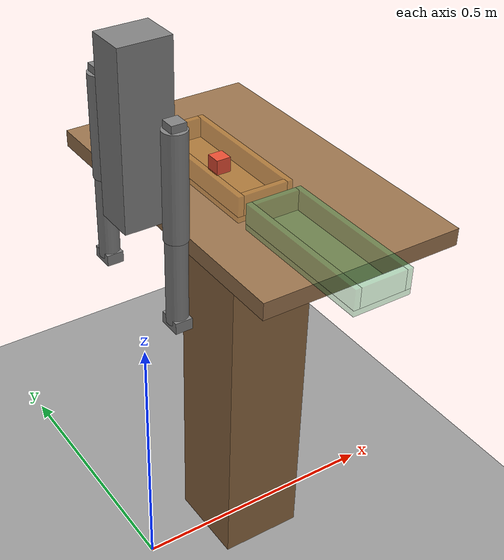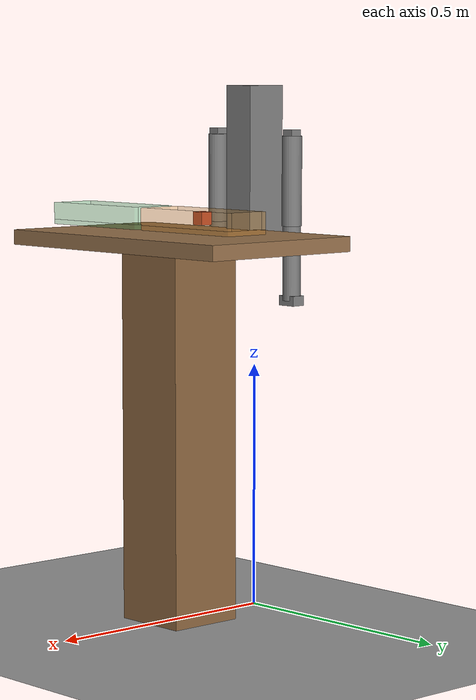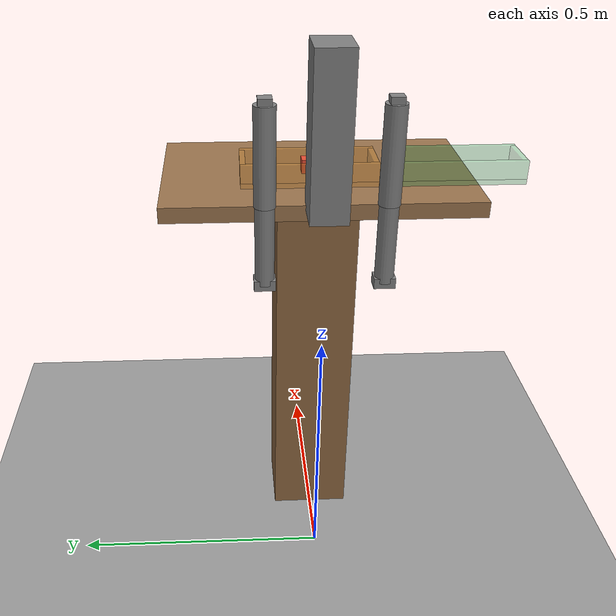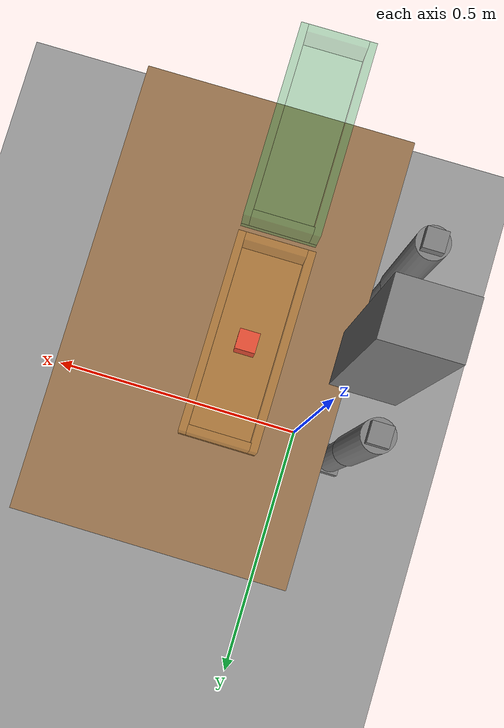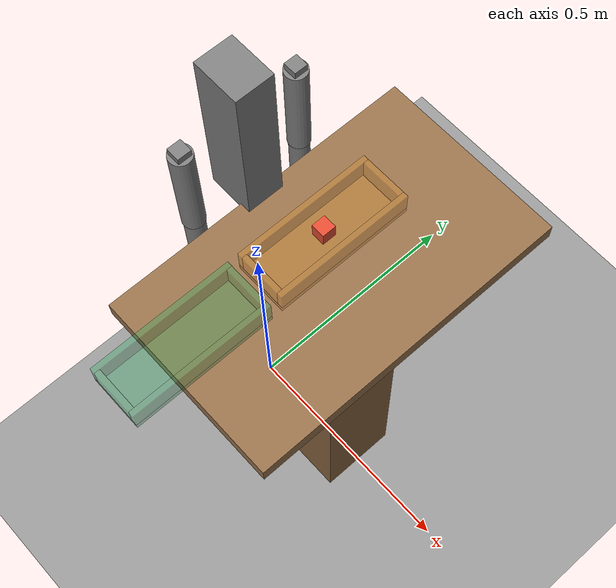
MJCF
<!--
  GENERATED by scripts/build_model.py (task=suction_pick_place) — do NOT hand-edit.
  Source of truth: models/urdf/humanoid.urdf + models/mjcf/scene.xml + build_model.py.
-->
<mujoco model="bin_picking_scene">
  <compiler angle="radian"/>

  <option integrator="implicitfast"/>

  <visual>
    <global offwidth="1280" offheight="720"/>
  </visual>

  <default>
    <default/>
  </default>

  <worldbody>
    <geom name="ground" size="5 5 0.1" type="plane" rgba="0.6 0.6 0.6 1"/>
    <geom name="pp_table_pedestal" size="0.08 0.08 0.375" pos="0.205 0 0.375" type="box" rgba="0.55 0.4 0.25 1"/>
    <geom name="pp_table_top" size="0.18 0.3 0.015" pos="0.205 0 0.765" type="box" rgba="0.6 0.45 0.3 1"/>
    <geom name="box_source_floor" size="0.05 0.13 0.005" pos="0.16 0.02 0.785" type="box" rgba="0.85 0.55 0.15 0.35"/>
    <geom name="box_source_wall_front" size="0.005 0.13 0.0175" pos="0.205 0.02 0.8075" type="box" rgba="0.85 0.55 0.15 0.35"/>
    <geom name="box_source_wall_back" size="0.005 0.13 0.0175" pos="0.115 0.02 0.8075" type="box" rgba="0.85 0.55 0.15 0.35"/>
    <geom name="box_source_wall_left" size="0.04 0.005 0.0175" pos="0.16 0.145 0.8075" type="box" rgba="0.85 0.55 0.15 0.35"/>
    <geom name="box_source_wall_right" size="0.04 0.005 0.0175" pos="0.16 -0.105 0.8075" type="box" rgba="0.85 0.55 0.15 0.35"/>
    <geom name="box_dest_floor" size="0.05 0.13 0.005" pos="0.16 -0.26 0.785" type="box" rgba="0.15 0.65 0.35 0.35"/>
    <geom name="box_dest_wall_front" size="0.005 0.13 0.0175" pos="0.205 -0.26 0.8075" type="box" rgba="0.15 0.65 0.35 0.35"/>
    <geom name="box_dest_wall_back" size="0.005 0.13 0.0175" pos="0.115 -0.26 0.8075" type="box" rgba="0.15 0.65 0.35 0.35"/>
    <geom name="box_dest_wall_left" size="0.04 0.005 0.0175" pos="0.16 -0.135 0.8075" type="box" rgba="0.15 0.65 0.35 0.35"/>
    <geom name="box_dest_wall_right" size="0.04 0.005 0.0175" pos="0.16 -0.385 0.8075" type="box" rgba="0.15 0.65 0.35 0.35"/>
    <light name="key_light" pos="0 0 3" dir="0 0 -1" diffuse="1 1 1"/>
    <body name="mount" pos="0 0 0.92">
      <frame name="robot_mount">
        <body name="base_link">
          <body name="torso_link">
            <geom name="torso_collision" size="0.045 0.035 0.15" type="box" density="550"/>
            <camera name="head_camera" pos="0.45 -0.12 0.15" quat="0.645974 0.287606 0.287606 0.645974" resolution="640 480" fovy="73.7398"/>
            <body name="left_shoulder_yaw_link" pos="0 0.11 0.05">
              <joint name="left_shoulder_yaw_joint" pos="0 0 0" axis="0 0 1" range="-1.5708 1.5708" actuatorfrcrange="-3 3"/>
              <geom name="left_shoulder_yaw_actuator_collision" size="0.0125 0.0125 0.0125" type="box" density="9600"/>
              <body name="left_shoulder_link">
                <joint name="left_shoulder_pitch_joint" pos="0 0 0" axis="0 1 0" range="-2.0944 2.7053" actuatorfrcrange="-3 3"/>
                <geom name="left_shoulder_actuator_collision" size="0.0125 0.0125 0.0125" type="box" density="9600"/>
                <body name="left_upper_arm_link">
                  <joint name="left_shoulder_roll_joint" pos="0 0 0" axis="1 0 0" range="-0.8727 2.0944" actuatorfrcrange="-3 3"/>
                  <geom name="left_shoulder_roll_actuator_collision" size="0.0125 0.0125 0.0125" pos="0 0 -0.015" type="box" density="9600"/>
                  <geom name="left_upper_arm_collision" size="0.02 0.09" pos="0 0 -0.09" type="cylinder" density="1200"/>
                  <body name="left_forearm_link" pos="0 0 -0.18">
                    <joint name="left_elbow_joint" pos="0 0 0" axis="0 1 0" range="0 2.5831" actuatorfrcrange="-2 2"/>
                    <geom name="left_elbow_actuator_collision" size="0.0125 0.0125 0.0125" pos="0 0 -0.015" type="box" density="9600"/>
                    <geom name="left_forearm_collision" size="0.018 0.075" pos="0 0 -0.075" type="cylinder" density="1200"/>
                    <body name="left_ee_mount_link" pos="0 0 -0.15">
                      <body name="left_gripper_base_link">
                        <geom name="left_gripper_base_collision" size="0.015 0.02 0.01" type="box" density="5000"/>
                        <body name="left_gripper_finger1_link">
                          <joint name="left_gripper_finger1_joint" pos="0 0 0" axis="0 1 0" type="slide" range="0 0.03" actuatorfrcrange="-10 10"/>
                          <geom name="left_gripper_finger1_collision" size="0.001 0.001 0.001" pos="0 0.004 -0.025" type="box" contype="0" conaffinity="0" friction="1.2" density="1200" rgba="0.5 0.5 0.5 0"/>
                        </body>
                        <body name="left_gripper_finger2_link">
                          <joint name="left_gripper_finger2_joint" pos="0 0 0" axis="0 -1 0" type="slide" range="0 0.03" actuatorfrcrange="-10 10"/>
                          <geom name="left_gripper_finger2_collision" size="0.001 0.001 0.001" pos="0 -0.004 -0.025" type="box" contype="0" conaffinity="0" friction="1.2" density="1200" rgba="0.5 0.5 0.5 0"/>
                        </body>
                      </body>
                    </body>
                  </body>
                </body>
              </body>
            </body>
            <body name="right_shoulder_yaw_link" pos="0 -0.11 0.05">
              <joint name="right_shoulder_yaw_joint" pos="0 0 0" axis="0 0 1" range="-1.5708 1.5708" actuatorfrcrange="-3 3"/>
              <geom name="right_shoulder_yaw_actuator_collision" size="0.0125 0.0125 0.0125" type="box" density="9600"/>
              <body name="right_shoulder_link">
                <joint name="right_shoulder_pitch_joint" pos="0 0 0" axis="0 1 0" range="-2.0944 2.7053" actuatorfrcrange="-3 3"/>
                <geom name="right_shoulder_actuator_collision" size="0.0125 0.0125 0.0125" type="box" density="9600"/>
                <body name="right_upper_arm_link">
                  <joint name="right_shoulder_roll_joint" pos="0 0 0" axis="-1 0 0" range="-0.8727 2.0944" actuatorfrcrange="-3 3"/>
                  <geom name="right_shoulder_roll_actuator_collision" size="0.0125 0.0125 0.0125" pos="0 0 -0.015" type="box" density="9600"/>
                  <geom name="right_upper_arm_collision" size="0.02 0.09" pos="0 0 -0.09" type="cylinder" density="1200"/>
                  <body name="right_forearm_link" pos="0 0 -0.18">
                    <joint name="right_elbow_joint" pos="0 0 0" axis="0 1 0" range="0 2.5831" actuatorfrcrange="-2 2"/>
                    <geom name="right_elbow_actuator_collision" size="0.0125 0.0125 0.0125" pos="0 0 -0.015" type="box" density="9600"/>
                    <geom name="right_forearm_collision" size="0.018 0.075" pos="0 0 -0.075" type="cylinder" density="1200"/>
                    <body name="right_ee_mount_link" pos="0 0 -0.15">
                      <body name="right_gripper_base_link">
                        <geom name="right_gripper_base_collision" size="0.015 0.02 0.01" type="box" density="5000"/>
                        <body name="right_gripper_finger1_link">
                          <joint name="right_gripper_finger1_joint" pos="0 0 0" axis="0 1 0" type="slide" range="0 0.03" actuatorfrcrange="-10 10"/>
                          <geom name="right_gripper_finger1_collision" size="0.001 0.001 0.001" pos="0 0.004 -0.025" type="box" contype="0" conaffinity="0" friction="1.2" density="1200" rgba="0.5 0.5 0.5 0"/>
                        </body>
                        <body name="right_gripper_finger2_link">
                          <joint name="right_gripper_finger2_joint" pos="0 0 0" axis="0 -1 0" type="slide" range="0 0.03" actuatorfrcrange="-10 10"/>
                          <geom name="right_gripper_finger2_collision" size="0.001 0.001 0.001" pos="0 -0.004 -0.025" type="box" contype="0" conaffinity="0" friction="1.2" density="1200" rgba="0.5 0.5 0.5 0"/>
                        </body>
                      </body>
                    </body>
                  </body>
                </body>
              </body>
            </body>
          </body>
        </body>
      </frame>
    </body>
    <body name="object_0" pos="0.16 0.02 0.808">
      <joint name="object_0_freejoint" type="free"/>
      <geom name="object_0_collision" size="0.013 0.013 0.013" type="box" friction="0.8 0.005 0.005" mass="0.03" rgba="0.9 0.3 0.2 1"/>
    </body>
  </worldbody>

  <contact>
    <exclude body1="left_shoulder_yaw_link" body2="left_upper_arm_link"/>
    <exclude body1="right_shoulder_yaw_link" body2="right_upper_arm_link"/>
  </contact>

  <equality>
    <joint joint1="left_gripper_finger2_joint" joint2="left_gripper_finger1_joint" polycoef="0 1 0 0 0"/>
    <joint joint1="right_gripper_finger2_joint" joint2="right_gripper_finger1_joint" polycoef="0 1 0 0 0"/>
    <weld name="left_suction_weld" body1="left_gripper_base_link" body2="object_0" anchor="0 0 0" relpose="0 0 0 0 0 0 0" torquescale="0" active="false"/>
    <weld name="right_suction_weld" body1="right_gripper_base_link" body2="object_0" anchor="0 0 0" relpose="0 0 0 0 0 0 0" torquescale="0" active="false"/>
  </equality>

  <actuator>
    <general name="left_shoulder_yaw_joint_position" joint="left_shoulder_yaw_joint" ctrllimited="true" ctrlrange="-1.5708 1.5708" forcelimited="true" forcerange="-3 3" biastype="affine" gainprm="60" biasprm="0 -60 -6"/>
    <general name="left_shoulder_pitch_joint_position" joint="left_shoulder_pitch_joint" ctrllimited="true" ctrlrange="-2.0944 2.7053" forcelimited="true" forcerange="-3 3" biastype="affine" gainprm="60" biasprm="0 -60 -6"/>
    <general name="left_shoulder_roll_joint_position" joint="left_shoulder_roll_joint" ctrllimited="true" ctrlrange="-0.8727 2.0944" forcelimited="true" forcerange="-3 3" biastype="affine" gainprm="60" biasprm="0 -60 -6"/>
    <general name="left_elbow_joint_position" joint="left_elbow_joint" ctrllimited="true" ctrlrange="0 2.5831" forcelimited="true" forcerange="-2 2" biastype="affine" gainprm="60" biasprm="0 -60 -6"/>
    <general name="right_shoulder_yaw_joint_position" joint="right_shoulder_yaw_joint" ctrllimited="true" ctrlrange="-1.5708 1.5708" forcelimited="true" forcerange="-3 3" biastype="affine" gainprm="60" biasprm="0 -60 -6"/>
    <general name="right_shoulder_pitch_joint_position" joint="right_shoulder_pitch_joint" ctrllimited="true" ctrlrange="-2.0944 2.7053" forcelimited="true" forcerange="-3 3" biastype="affine" gainprm="60" biasprm="0 -60 -6"/>
    <general name="right_shoulder_roll_joint_position" joint="right_shoulder_roll_joint" ctrllimited="true" ctrlrange="-0.8727 2.0944" forcelimited="true" forcerange="-3 3" biastype="affine" gainprm="60" biasprm="0 -60 -6"/>
    <general name="right_elbow_joint_position" joint="right_elbow_joint" ctrllimited="true" ctrlrange="0 2.5831" forcelimited="true" forcerange="-2 2" biastype="affine" gainprm="60" biasprm="0 -60 -6"/>
    <general name="left_gripper_finger1_joint_position" joint="left_gripper_finger1_joint" ctrllimited="true" ctrlrange="0 0.03" forcelimited="true" forcerange="-10 10" biastype="affine" gainprm="200" biasprm="0 -200 -10"/>
    <general name="right_gripper_finger1_joint_position" joint="right_gripper_finger1_joint" ctrllimited="true" ctrlrange="0 0.03" forcelimited="true" forcerange="-10 10" biastype="affine" gainprm="200" biasprm="0 -200 -10"/>
  </actuator>
</mujoco>
